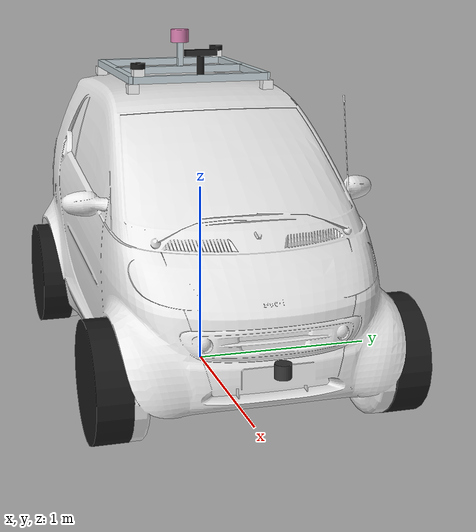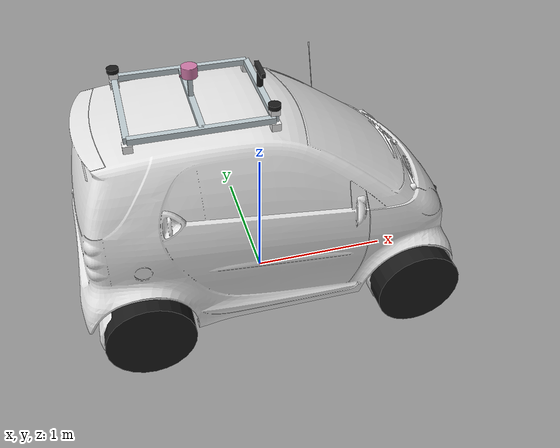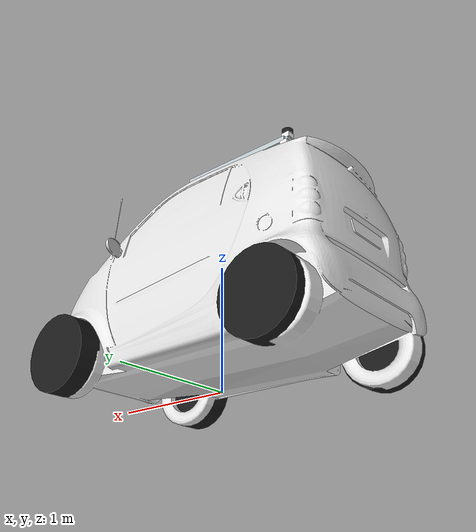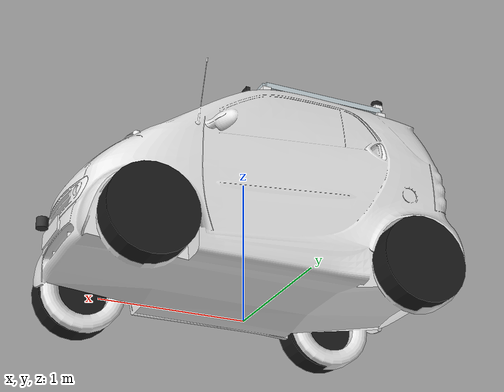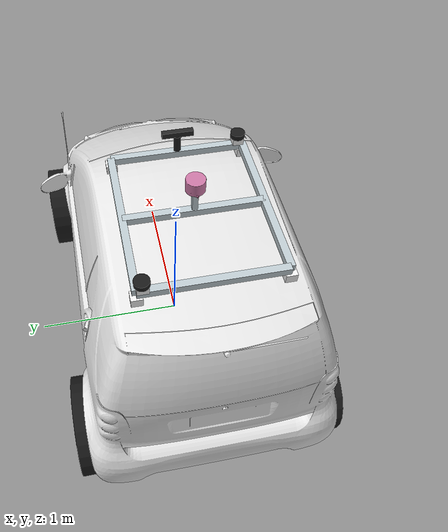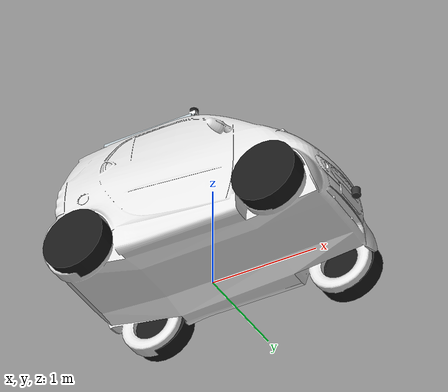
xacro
<?xml version="1.0"?>
<robot name="sac" xmlns:xacro="http://ros.org/wiki/xacro">

  <xacro:include filename="$(find sac_description)/urdf/common_properties.urdf.xacro" />
  <xacro:include filename="$(find sac_description)/urdf/sensors.urdf.xacro" />
  <xacro:include filename="$(find sac_description)/urdf/roof_rack.urdf.xacro" />

  <!-- ============ Vehicle parameters (smart fortwo W453; not measured) ============ -->
  <xacro:property name="wheel_base" value="1.873" />      <!-- front axle to rear axle [m] -->
  <xacro:property name="front_track" value="1.469" />     <!-- left to right wheel centre [m] -->
  <xacro:property name="rear_track" value="1.430" />
  <xacro:property name="wheel_radius" value="0.30" />     <!-- 165/65 R15 front, 185/60 R15 rear -->
  <xacro:property name="wheel_width" value="0.175" />
  <xacro:property name="wheel_mass" value="15.0" />
  <!-- 6.95 m turning circle -->
  <xacro:property name="steering_limit" value="0.6" />    <!-- [rad] -->

  <!-- Body, used for collisions and inertia -->
  <xacro:property name="body_length" value="2.695" />
  <xacro:property name="body_width" value="1.663" />
  <xacro:property name="body_bottom" value="0.15" />      <!-- ground clearance [m] -->
  <xacro:property name="body_top" value="1.555" />
  <xacro:property name="body_mass" value="820.0" />       <!-- ~880 kg kerb weight without wheels -->
  <!-- Centre of mass: rear engine, ~40/60 front/rear axle load, low in the car -->
  <xacro:property name="com_x" value="${-wheel_base / 2 + 0.4 * wheel_base}" />
  <xacro:property name="com_z" value="0.55" />

  <xacro:arg name="suspension" default="false" />
  <xacro:property name="suspension" value="$(arg suspension)" />
  <xacro:property name="suspension_travel" value="0.08" />        <!-- [m] each way -->
  <xacro:property name="suspension_frequency" value="1.4" />      <!-- [Hz] -->
  <xacro:property name="suspension_damping_ratio" value="0.3" />
  <xacro:property name="suspension_mass" value="5.0" />           <!-- hub and arm, per corner [kg] -->
  <!-- The whole car: body, wheels, suspension and steering links, roof rack (8 kg) -->
  <xacro:property name="car_mass" value="${body_mass + 4 * wheel_mass + 4 * suspension_mass + 2 * 1.0 + 8.0}" />
  <!-- Load on each spring at rest, from the axle loads (40/60, see com_x). The springs carry
       the whole car in the simulation, so the ride height stays the description's. -->
  <xacro:property name="front_corner_mass" value="${car_mass * 0.4 / 2}" />
  <xacro:property name="rear_corner_mass" value="${car_mass * 0.6 / 2}" />

  <xacro:property name="max_speed" value="20.0" />        <!-- [m/s] forward -->
  <xacro:property name="max_reverse_speed" value="5.0" />
  <xacro:property name="max_acceleration" value="3.0" />
  <xacro:property name="max_deceleration" value="7.0" />  <!-- braking [m/s^2] -->

  <!-- Roof rack (aluminium profiles). Width from photos of the real car, scaled by the ZED 2's
       known 175 mm width; length fits the flat part of the roof (x 0 to -0.9, y +-0.45). -->
  <xacro:property name="roof_z" value="${body_top}" />      <!-- highest point of the roof -->
  <xacro:property name="rack_base_z" value="1.53" />       <!-- roof height under the rack's feet -->
  <xacro:property name="rack_front_x" value="0.0" />        <!-- front bar, at the top of the windshield -->
  <xacro:property name="rack_rear_x" value="-0.9" />
  <xacro:property name="rack_half_width" value="0.375" />
  <xacro:property name="rack_clearance" value="0.05" />     <!-- feet: roof to the bottom of the profiles -->
  <xacro:property name="rack_profile" value="0.04" />       <!-- 40 x 40 mm profile -->
  <xacro:property name="rack_top_z" value="${rack_base_z + rack_clearance + rack_profile}" />
  <xacro:property name="rack_mid_x" value="${(rack_front_x + rack_rear_x) / 2}" />

  <xacro:property name="rack_front" value="${rack_front_x - rack_mid_x}" />  <!-- front bar, in the rack frame -->
  <!-- ZED 2 on a 10 cm ball head in the middle of the front bar, level -->
  <xacro:property name="camera_xyz" value="${rack_front} 0 0.10" />
  <xacro:property name="camera_pitch" value="0.0" />      <!-- [rad], positive tilts down -->
  <!-- VLP-16 on a post on the cross bar, in the middle of the rack, its base 20 cm above
       the roof (measured); the lidar frame is its optical centre, 37.7 mm above the base -->
  <xacro:property name="lidar_base_above_roof" value="0.20" />
  <xacro:property name="lidar_xyz" value="0 0 ${roof_z + lidar_base_above_roof - rack_top_z + 0.0377}" />
  <!-- Two GNSS antennas at opposite corners of the rack: front right and rear left -->
  <xacro:property name="rack_rear" value="${rack_rear_x - rack_mid_x}" />    <!-- rear bar, in the rack frame -->
  <xacro:property name="gnss_antenna_y" value="${rack_half_width - 0.03}" />
  <xacro:property name="gnss_front_right_xy" value="${rack_front} ${-gnss_antenna_y}" />
  <xacro:property name="gnss_rear_left_xy" value="${rack_rear} ${gnss_antenna_y}" />
  <xacro:property name="gnss_antenna_z" value="0.07" />   <!-- antenna phase centre above the rack -->
  <!-- Three IMUs on the chassis, on the centre line (not measured): in the middle of the
       car, over the front axle and over the rear axle -->
  <xacro:property name="middle_imu_xyz" value="0 0 0.5" />
  <xacro:property name="front_imu_xyz" value="${wheel_base / 2} 0 0.5" />
  <xacro:property name="back_imu_xyz" value="${-wheel_base / 2} 0 0.5" />
  <!-- 2D lidar on the front bumper, level (not measured) -->
  <xacro:property name="front_lidar_xyz" value="${body_length / 2 + 0.05} 0 0.45" />

  <!-- ============================== Body ============================== -->
  <link name="base_footprint" />

  <joint name="joint_base_footprint_base_link" type="fixed">
    <parent link="base_footprint" />
    <child link="base_link" />
    <origin xyz="0 0 0" rpy="0 0 0" />
  </joint>

  <link name="base_link">
    <xacro:inertial_dummy />
  </link>

  <joint name="joint_base_link_chassis" type="fixed">
    <parent link="base_link" />
    <child link="link_chassis" />
    <origin xyz="0 0 0" rpy="0 0 0" />
  </joint>

  <xacro:property name="body_height" value="${body_top - body_bottom}" />
  <xacro:property name="body_center_z" value="${(body_top + body_bottom) / 2}" />

  <link name="link_chassis">
    <visual name="chassis_visual">
      <!-- A smart fortwo, Y-up; the scale makes it 2.695 x 1.663 x 1.555 m -->
      <origin xyz="0 0 0" rpy="${pi/2} 0 ${pi/2}" />
      <geometry>
        <mesh filename="package://sac_description/meshes/smart_car.obj" scale="0.0125 0.0129 0.0135" />
      </geometry>
      <material name="white">
        <color rgba="0.9 0.9 0.9 1.0" />
      </material>
    </visual>

    <collision>
      <origin xyz="0 0 ${body_center_z}" rpy="0 0 0" />
      <geometry>
        <box size="${body_length} ${body_width} ${body_height}" />
      </geometry>
    </collision>

    <xacro:inertial_cuboid_with_pose mass="${body_mass}" x="${body_length}" y="${body_width}" z="${body_height}">
      <origin xyz="${com_x} 0 ${com_z}" rpy="0 0 0" />
    </xacro:inertial_cuboid_with_pose>
  </link>

  <!-- ============================== Wheels ============================== -->
  <xacro:property name="max_wheel_speed" value="${max_speed / wheel_radius * 1.2}" />  <!-- [rad/s] -->

  <!-- The joint frame is turned so that its z axis points to the car's left (+y):
       positive rotation about it rolls the car forward. -->
  <xacro:macro name="wheel_link" params="name">
    <link name="${name}">
      <xacro:inertial_cylinder mass="${wheel_mass}" radius="${wheel_radius}" length="${wheel_width}" />
      <visual name="${name}_visual">
        <geometry>
          <cylinder radius="${wheel_radius}" length="${wheel_width}" />
        </geometry>
        <material name="black">
          <color rgba="0.1 0.1 0.1 1" />
        </material>
      </visual>
      <!-- A sphere touches the ground in a single point, which is steadier than a
           cylinder's edge in the physics engine -->
      <collision>
        <geometry>
          <sphere radius="${wheel_radius}" />
        </geometry>
      </collision>
    </link>
  </xacro:macro>

  <xacro:macro name="corner" params="corner x y sprung_mass">
    <xacro:if value="${suspension}">
      <xacro:property name="stiffness" value="${sprung_mass * (2 * pi * suspension_frequency) ** 2}" />
      <link name="${corner}_suspension_link">
        <xacro:inertial_cuboid mass="${suspension_mass}" x="0.1" y="0.1" z="0.1" />
      </link>
      <joint name="${corner}_suspension_joint" type="prismatic">
        <parent link="link_chassis" />
        <child link="${corner}_suspension_link" />
        <origin xyz="${x} ${y} ${wheel_radius}" rpy="0 0 0" />
        <axis xyz="0 0 1" />
        <limit effort="100000" velocity="10" lower="${-suspension_travel}" upper="${suspension_travel}" />
        <dynamics damping="${2 * suspension_damping_ratio * sqrt(stiffness * sprung_mass)}" />
      </joint>
    </xacro:if>
  </xacro:macro>

  <xacro:macro name="rear_wheel" params="side y">
    <xacro:corner corner="rear_${side}" x="${-wheel_base / 2}" y="${y}" sprung_mass="${rear_corner_mass}" />
    <xacro:wheel_link name="rear_${side}_wheel" />
    <joint name="rear_${side}_wheel_joint" type="continuous">
      <xacro:if value="${suspension}">
        <parent link="rear_${side}_suspension_link" />
        <origin xyz="0 0 0" rpy="${-pi/2} 0 0" />
      </xacro:if>
      <xacro:unless value="${suspension}">
        <parent link="link_chassis" />
        <origin xyz="${-wheel_base / 2} ${y} ${wheel_radius}" rpy="${-pi/2} 0 0" />
      </xacro:unless>
      <child link="rear_${side}_wheel" />
      <axis xyz="0 0 1" />
      <limit effort="1000" velocity="${max_wheel_speed}" />
    </joint>
  </xacro:macro>

  <xacro:macro name="front_wheel" params="side y">
    <xacro:corner corner="front_${side}" x="${wheel_base / 2}" y="${y}" sprung_mass="${front_corner_mass}" />
    <!-- 1 kg: a much lighter link between two joints makes the physics unsteady -->
    <link name="front_${side}_wheel_steering_link">
      <xacro:inertial_cuboid mass="1.0" x="0.1" y="0.1" z="0.1" />
    </link>
    <!-- Same frame as the wheel joint, so the steering axis is its -y (the car's up) -->
    <joint name="front_${side}_wheel_steering_joint" type="revolute">
      <xacro:if value="${suspension}">
        <parent link="front_${side}_suspension_link" />
        <origin xyz="0 0 0" rpy="${-pi/2} 0 0" />
      </xacro:if>
      <xacro:unless value="${suspension}">
        <parent link="link_chassis" />
        <origin xyz="${wheel_base / 2} ${y} ${wheel_radius}" rpy="${-pi/2} 0 0" />
      </xacro:unless>
      <child link="front_${side}_wheel_steering_link" />
      <axis xyz="0 -1 0" />
      <limit effort="1000" velocity="10" lower="${-steering_limit}" upper="${steering_limit}" />
    </joint>

    <xacro:wheel_link name="front_${side}_wheel" />
    <joint name="front_${side}_wheel_rotating_joint" type="continuous">
      <parent link="front_${side}_wheel_steering_link" />
      <child link="front_${side}_wheel" />
      <origin xyz="0 0 0" rpy="0 0 0" />
      <axis xyz="0 0 1" />
      <limit effort="1000" velocity="${max_wheel_speed}" />
    </joint>
  </xacro:macro>

  <xacro:rear_wheel side="left" y="${rear_track / 2}" />
  <xacro:rear_wheel side="right" y="${-rear_track / 2}" />
  <xacro:front_wheel side="left" y="${front_track / 2}" />
  <xacro:front_wheel side="right" y="${-front_track / 2}" />

  <!-- ============================== Sensors ============================== -->
  <xacro:roof_rack parent_link="link_chassis" roof_z="${rack_base_z}" front_x="${rack_front_x}"
    rear_x="${rack_rear_x}" half_width="${rack_half_width}" clearance="${rack_clearance}"
    profile="${rack_profile}" post_height="${roof_z + lidar_base_above_roof - rack_top_z}"
    antenna1_xy="${gnss_front_right_xy}" antenna2_xy="${gnss_rear_left_xy}" />

  <xacro:zed2 name="front_camera" parent_link="roof_rack">
    <origin xyz="${camera_xyz}" rpy="0 ${camera_pitch} 0" />
  </xacro:zed2>

  <xacro:imu name="middle_imu" parent_link="link_chassis">
    <origin xyz="${middle_imu_xyz}" rpy="0 0 0" />
  </xacro:imu>

  <xacro:imu name="front_imu" parent_link="link_chassis">
    <origin xyz="${front_imu_xyz}" rpy="0 0 0" />
  </xacro:imu>

  <xacro:imu name="back_imu" parent_link="link_chassis">
    <origin xyz="${back_imu_xyz}" rpy="0 0 0" />
  </xacro:imu>

  <!-- Two antennas; the heading follows from their two positions -->
  <xacro:navsat name="navsat_front_right" parent_link="roof_rack">
    <origin xyz="${gnss_front_right_xy} ${gnss_antenna_z}" rpy="0 0 0" />
  </xacro:navsat>
  <xacro:navsat name="navsat_rear_left" parent_link="roof_rack">
    <origin xyz="${gnss_rear_left_xy} ${gnss_antenna_z}" rpy="0 0 0" />
  </xacro:navsat>

  <xacro:vlp16 name="roof_lidar" parent_link="roof_rack">
    <origin xyz="${lidar_xyz}" rpy="0 0 0" />
  </xacro:vlp16>

  <xacro:lidar_2d name="front_lidar" parent_link="link_chassis">
    <origin xyz="${front_lidar_xyz}" rpy="0 0 0" />
  </xacro:lidar_2d>

</robot>

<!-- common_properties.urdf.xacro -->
<!-- Inertia macros and unit conversions shared by the robot files -->
<robot name="xacro_properties" xmlns:xacro="http://ros.org/wiki/xacro">

    <!-- Solid box of the given size -->
    <xacro:macro name="inertial_cuboid_with_pose" params="mass x y z *origin">
        <inertial>
            <mass value="${mass}" />
            <xacro:insert_block name="origin" />
            <inertia ixx="${(1/12) * mass * (y*y + z*z)}" ixy="0.0" ixz="0.0"
                iyy="${(1/12) * mass * (x*x + z*z)}" iyz="0.0"
                izz="${(1/12) * mass * (x*x + y*y)}" />
        </inertial>
    </xacro:macro>

    <xacro:macro name="inertial_cuboid" params="mass x y z">
        <xacro:inertial_cuboid_with_pose mass="${mass}" x="${x}" y="${y}" z="${z}">
            <origin xyz="0 0 0" />
        </xacro:inertial_cuboid_with_pose>
    </xacro:macro>

    <!-- Solid cylinder along its z axis -->
    <xacro:macro name="inertial_cylinder_with_pose" params="mass radius length *origin">
        <inertial>
            <xacro:insert_block name="origin" />
            <mass value="${mass}" />
            <inertia ixx="${(1/12) * mass * (3*radius*radius + length*length)}" ixy="0.0" ixz="0.0"
                iyy="${(1/12) * mass * (3*radius*radius + length*length)}" iyz="0.0"
                izz="${(1/2) * mass * (radius*radius)}" />
        </inertial>
    </xacro:macro>

    <xacro:macro name="inertial_cylinder" params="mass radius length">
        <xacro:inertial_cylinder_with_pose mass="${mass}" radius="${radius}" length="${length}">
            <origin xyz="0 0 0" />
        </xacro:inertial_cylinder_with_pose>
    </xacro:macro>

    <xacro:macro name="inertial_sphere" params="mass radius">
        <inertial>
            <mass value="${mass}" />
            <inertia ixx="${(2/5) * mass * radius * radius}" ixy="0.0" ixz="0.0"
                iyy="${(2/5) * mass * radius * radius}" iyz="0.0"
                izz="${(2/5) * mass * radius * radius}" />
        </inertial>
    </xacro:macro>

    <!-- Tiny inertia for frame links (sensors, steering knuckles): Gazebo drops or
         merges links without one -->
    <xacro:macro name="inertial_dummy">
        <xacro:inertial_cuboid mass="0.01" x="0.01" y="0.01" z="0.01" />
    </xacro:macro>

    <!-- Unit conversions -->
    <xacro:property name="cm2m" value="${1/100.0}" />
    <xacro:property name="mm2m" value="${1/1000.0}" />
    <xacro:property name="in2m" value="0.0254" />
    <xacro:property name="deg2rad" value="${pi/180.0}" />

</robot>

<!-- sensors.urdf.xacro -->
<robot xmlns:xacro="http://ros.org/wiki/xacro">

    <!-- ============================== IMU ============================== -->
    <xacro:macro name="imu" params="name parent_link *origin frame:=''">
        <xacro:property name="base_frame" value="${frame if frame else name + '_frame'}" />

        <joint name="${base_frame}_joint" type="fixed">
            <parent link="${parent_link}" />
            <child link="${base_frame}" />
            <xacro:insert_block name="origin" />
        </joint>

        <link name="${base_frame}">
            <xacro:inertial_dummy />
        </link>
    </xacro:macro>

    <!-- ============================== GNSS antenna ============================== -->
    <xacro:macro name="navsat" params="name parent_link *origin">
        <joint name="${name}_joint" type="fixed">
            <parent link="${parent_link}" />
            <child link="${name}_frame" />
            <xacro:insert_block name="origin" />
        </joint>

        <link name="${name}_frame">
            <xacro:inertial_dummy />
        </link>
    </xacro:macro>

    <!-- ============================== Velodyne VLP-16 ============================== -->
    <xacro:property name="vlp16_optical_centre_height" value="0.0377" />

    <xacro:macro name="vlp16" params="name parent_link *origin">
        <joint name="${name}_joint" type="fixed">
            <parent link="${parent_link}" />
            <child link="${name}_frame" />
            <xacro:insert_block name="origin" />
        </joint>

        <link name="${name}_frame">
            <xacro:inertial_dummy />
            <visual>
                <!-- The mesh is Y-up, in millimetres, with its origin at the base -->
                <origin xyz="0 0 ${-vlp16_optical_centre_height}" rpy="${pi/2} 0 ${pi}" />
                <geometry>
                    <mesh filename="package://sac_description/meshes/velodyne-vlp16.stl" scale="0.001 0.001 0.001" />
                </geometry>
            </visual>
        </link>
    </xacro:macro>

    <!-- ============================== 2D lidar ============================== -->
    <xacro:macro name="lidar_2d" params="name parent_link *origin">
        <joint name="${name}_joint" type="fixed">
            <parent link="${parent_link}" />
            <child link="${name}_frame" />
            <xacro:insert_block name="origin" />
        </joint>

        <link name="${name}_frame">
            <xacro:inertial_dummy />
            <visual>
                <geometry>
                    <cylinder radius="0.04" length="0.07" />
                </geometry>
                <material name="dark_grey">
                    <color rgba="0.2 0.2 0.2 1.0" />
                </material>
            </visual>
        </link>
    </xacro:macro>

    <!-- ============================== Stereolabs ZED 2 ============================== -->
    <xacro:property name="zed2_baseline" value="0.12" />
    <xacro:property name="zed2_size" value="0.030 0.175 0.033" />  <!-- depth, width, height [m] -->
    <xacro:property name="zed2_height" value="0.033" />
    <xacro:property name="zed2_mass" value="0.166" />

    <!-- Mounting point: middle of the bottom face -->
    <xacro:macro name="zed2" params="name parent_link *origin">
        <!-- Rotation from a body frame (x forward) to an optical frame (z forward) -->
        <xacro:property name="optical_rpy" value="${-pi/2} 0 ${-pi/2}" />

        <joint name="${name}_camera_joint" type="fixed">
            <parent link="${parent_link}" />
            <child link="${name}_camera_link" />
            <xacro:insert_block name="origin" />
        </joint>
        <link name="${name}_camera_link">
            <xacro:inertial_dummy />
        </link>

        <joint name="${name}_camera_center_joint" type="fixed">
            <parent link="${name}_camera_link" />
            <child link="${name}_camera_center" />
            <origin xyz="0 0 ${zed2_height / 2}" rpy="0 0 0" />
        </joint>
        <link name="${name}_camera_center">
            <visual>
                <geometry>
                    <box size="${zed2_size}" />
                </geometry>
                <material name="zed_gray">
                    <color rgba="0.15 0.15 0.15 1" />
                </material>
            </visual>
            <collision>
                <geometry>
                    <box size="${zed2_size}" />
                </geometry>
            </collision>
            <xacro:inertial_cuboid mass="${zed2_mass}" x="0.030" y="0.175" z="0.033" />
        </link>

        <xacro:macro name="zed2_eye" params="side y">
            <joint name="${name}_${side}_camera_joint" type="fixed">
                <parent link="${name}_camera_center" />
                <child link="${name}_${side}_camera_frame" />
                <origin xyz="0 ${y} 0" rpy="0 0 0" />
            </joint>
            <link name="${name}_${side}_camera_frame">
                <xacro:inertial_dummy />
            </link>

            <joint name="${name}_${side}_camera_optical_joint" type="fixed">
                <parent link="${name}_${side}_camera_frame" />
                <child link="${name}_${side}_camera_optical_frame" />
                <origin xyz="0 0 0" rpy="${optical_rpy}" />
            </joint>
            <link name="${name}_${side}_camera_optical_frame">
                <xacro:inertial_dummy />
            </link>
        </xacro:macro>
        <xacro:zed2_eye side="left" y="${zed2_baseline / 2}" />
        <xacro:zed2_eye side="right" y="${-zed2_baseline / 2}" />

        <!-- IMU at the camera centre (the real offset comes from the camera's calibration) -->
        <xacro:imu name="${name}" frame="${name}_imu_link" parent_link="${name}_camera_center">
            <origin xyz="0 0 0" rpy="0 0 0" />
        </xacro:imu>
    </xacro:macro>
</robot>

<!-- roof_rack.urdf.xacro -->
<robot xmlns:xacro="http://ros.org/wiki/xacro">

    <xacro:macro name="roof_rack" params="parent_link roof_z front_x rear_x half_width clearance profile post_height antenna1_xy antenna2_xy">
        <xacro:property name="length" value="${front_x - rear_x}" />
        <!-- Rack frame in the parent's coordinates -->
        <xacro:property name="ox" value="${(front_x + rear_x) / 2}" />
        <xacro:property name="oz" value="${roof_z + clearance + profile}" />
        <!-- In the rack frame -->
        <xacro:property name="front" value="${front_x - ox}" />
        <xacro:property name="rear" value="${rear_x - ox}" />
        <xacro:property name="bar_z" value="${-profile / 2}" />
        <xacro:property name="foot_z" value="${-profile - clearance / 2}" />

        <joint name="roof_rack_joint" type="fixed">
            <parent link="${parent_link}" />
            <child link="roof_rack" />
            <origin xyz="${ox} 0 ${oz}" rpy="0 0 0" />
        </joint>

        <xacro:macro name="rack_box" params="xyz size material:=rack_aluminium">
            <visual>
                <origin xyz="${xyz}" rpy="0 0 0" />
                <geometry>
                    <box size="${size}" />
                </geometry>
                <material name="${material}" />
            </visual>
        </xacro:macro>

        <link name="roof_rack">
            <!-- Frame: front, rear, left, right bars and the cross bar through the middle -->
            <xacro:rack_box xyz="${front} 0 ${bar_z}" size="${profile} ${2 * half_width} ${profile}" />
            <xacro:rack_box xyz="${rear} 0 ${bar_z}" size="${profile} ${2 * half_width} ${profile}" />
            <xacro:rack_box xyz="0 ${half_width} ${bar_z}" size="${length} ${profile} ${profile}" />
            <xacro:rack_box xyz="0 ${-half_width} ${bar_z}" size="${length} ${profile} ${profile}" />
            <xacro:rack_box xyz="0 0 ${bar_z}" size="${profile} ${2 * half_width} ${profile}" />

            <!-- Feet on the roof at the four corners -->
            <xacro:rack_box xyz="${front} ${half_width} ${foot_z}" size="0.06 0.06 ${clearance}" material="rack_plastic" />
            <xacro:rack_box xyz="${front} ${-half_width} ${foot_z}" size="0.06 0.06 ${clearance}" material="rack_plastic" />
            <xacro:rack_box xyz="${rear} ${half_width} ${foot_z}" size="0.06 0.06 ${clearance}" material="rack_plastic" />
            <xacro:rack_box xyz="${rear} ${-half_width} ${foot_z}" size="0.06 0.06 ${clearance}" material="rack_plastic" />

            <!-- Lidar post on the cross bar -->
            <xacro:rack_box xyz="0 0 ${post_height / 2}" size="0.03 0.03 ${post_height}" />

            <!-- Ball head under the camera, in the middle of the front bar -->
            <visual>
                <origin xyz="${front} 0 0.05" rpy="0 0 0" />
                <geometry>
                    <cylinder radius="0.02" length="0.10" />
                </geometry>
                <material name="rack_black" />
            </visual>

            <!-- GNSS antenna pucks on blocks (antenna*_xy: x y in the rack frame) -->
            <xacro:macro name="antenna_puck" params="xy">
                <xacro:rack_box xyz="${xy} 0.02" size="0.06 0.06 0.04" material="rack_plastic" />
                <visual>
                    <origin xyz="${xy} 0.055" rpy="0 0 0" />
                    <geometry>
                        <cylinder radius="0.04" length="0.03" />
                    </geometry>
                    <material name="rack_black" />
                </visual>
            </xacro:macro>
            <xacro:antenna_puck xy="${antenna1_xy}" />
            <xacro:antenna_puck xy="${antenna2_xy}" />

            <xacro:inertial_cuboid_with_pose mass="8.0" x="${length}" y="${2 * half_width}" z="${profile}">
                <origin xyz="0 0 ${bar_z}" rpy="0 0 0" />
            </xacro:inertial_cuboid_with_pose>
        </link>
    </xacro:macro>

    <material name="rack_aluminium">
        <color rgba="0.75 0.8 0.82 1" />
    </material>
    <material name="rack_plastic">
        <color rgba="0.95 0.95 0.95 1" />
    </material>
    <material name="rack_black">
        <color rgba="0.1 0.1 0.1 1" />
    </material>
</robot>
